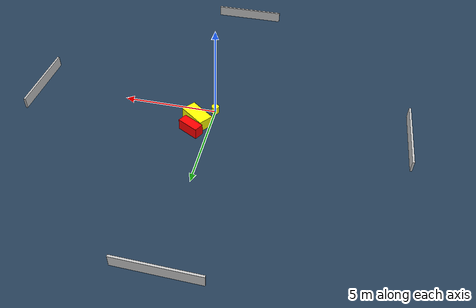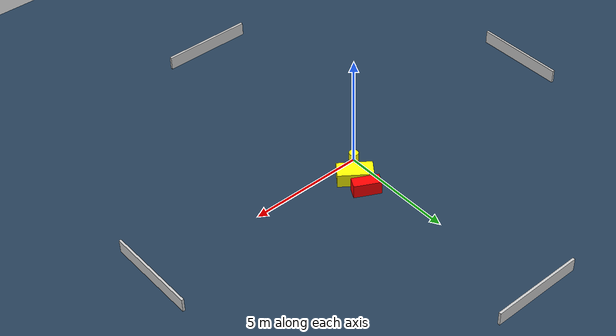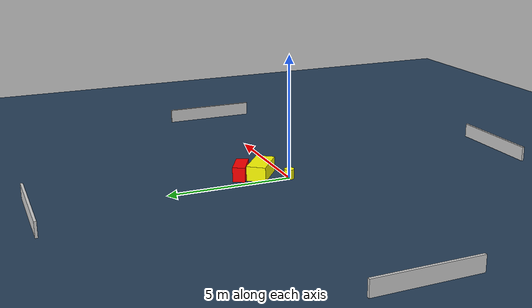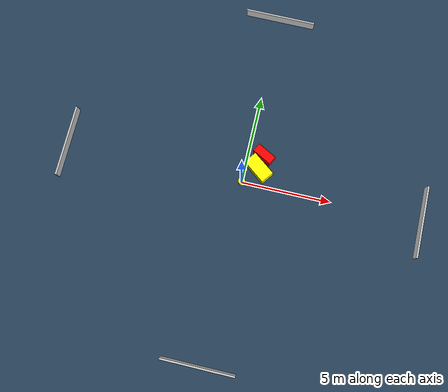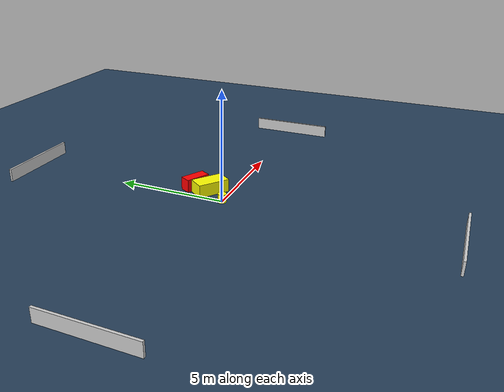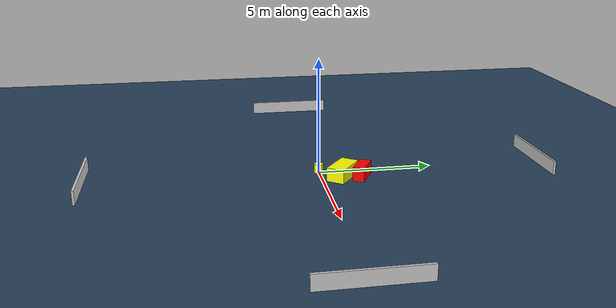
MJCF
<?xml version="1.0" ?>
<mujoco model="generated_environment">
  <option timestep="0.01" integrator="RK4" cone="elliptic"/>
  <default>
    <geom density="1"/>
  </default>
  <asset>
    <texture builtin="gradient" height="3072" name="skybox" rgb1="0.3 0.5 0.7" rgb2="0 0 0" type="skybox" width="512"/>
    <texture builtin="checker" height="300" name="groundplane" rgb1="0.2 0.3 0.4" rgb2="0.1 0.2 0.3" type="2d" width="300"/>
    <material name="groundplane" reflectance="0.2" texrepeat="5 5" texture="groundplane"/>
  </asset>
  <worldbody>
    <light dir="0 0 -1" directional="true" pos="0 0 1.5"/>
    <geom condim="3" friction="0.5 0.005 0.001" material="groundplane" name="floor" pos="0 0 0" size="0 0 0.05" type="plane"/>
    <body name="walls">
      <geom name="wall_1" condim="4" pos="-10.0 0.0 0.3" rgba="0.800000011920929 0.800000011920929 0.800000011920929 1.0" size="0.05 2.0 0.3" type="box"/>
      <geom name="wall_2" condim="4" pos="10.0 0.0 0.3" rgba="0.800000011920929 0.800000011920929 0.800000011920929 1.0" size="0.05 2.0 0.3" type="box"/>
      <geom name="wall_3" condim="4" pos="0.0 -10.0 0.3" rgba="0.800000011920929 0.800000011920929 0.800000011920929 1.0" size="2.0 0.05 0.3" type="box"/>
      <geom name="wall_4" condim="4" pos="0.0 10.0 0.3" rgba="0.800000011920929 0.800000011920929 0.800000011920929 1.0" size="2.0 0.05 0.3" type="box"/>
    </body>
    <body name="robot">
      <joint name="joint_x" type="slide" pos="0 0 0" axis="1 0 0"/>
      <joint name="joint_y" type="slide" pos="0 0 0" axis="0 1 0"/>
      <geom name="robot" type="cylinder" pos="0.0 0.0 0.2" size="0.2 0.2 0.0" mass="5.0" friction="1.0 0.005 0.0001" condim="4" rgba="1.0 1.0 0.0 1.0"/>
    </body>
    <body name="obstacle_1_movable">
      <geom name="obstacle_1_movable" condim="4" pos="0.748995383610062 0.917344469380925 0.3" euler="0 0 52.83766707981181" friction="0.0 0.005 0.001" rgba="1.0 1.0 0.0 1.0" size="0.3899339846830644 0.7454698164622009 0.3" type="box" mass="0.1"/>
      <joint type="free"/>
    </body>
    <body name="obstacle_2_static">
      <geom name="obstacle_2_static" condim="4" pos="0.875452041739448 1.7332925379794806 0.3" euler="0 0 331.82021756066086" friction="0.0 0.005 0.001" rgba="1.0 0.0 0.0 1.0" size="0.5831740797319298 0.2523466131941213 0.3" type="box"/>
    </body>
  </worldbody>
  <actuator>
    <motor name="actuator_x" joint="joint_x" gear="1" ctrlrange="-1 1"/>
    <motor name="actuator_y" joint="joint_y" gear="1" ctrlrange="-1 1"/>
  </actuator>
</mujoco>
